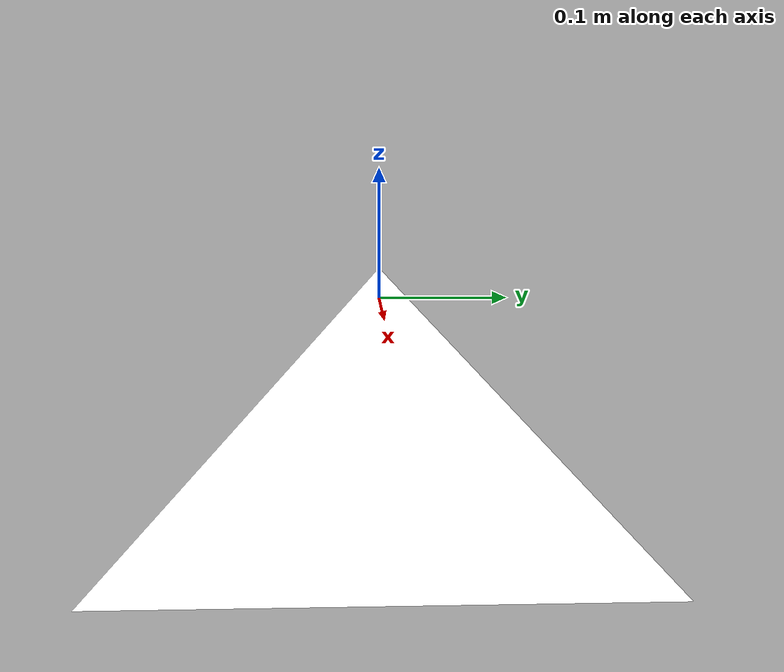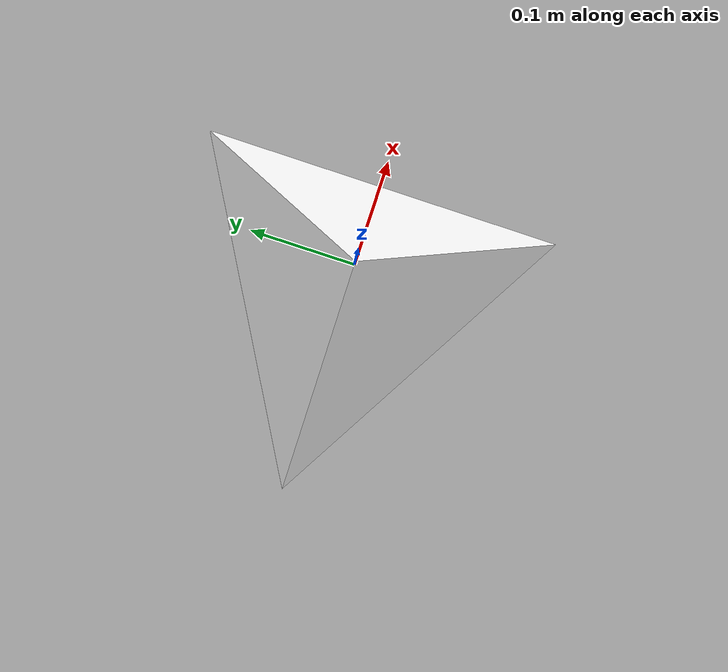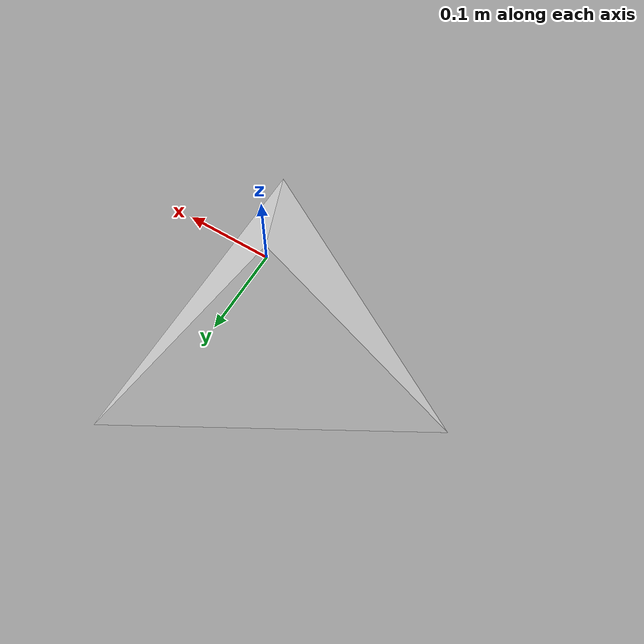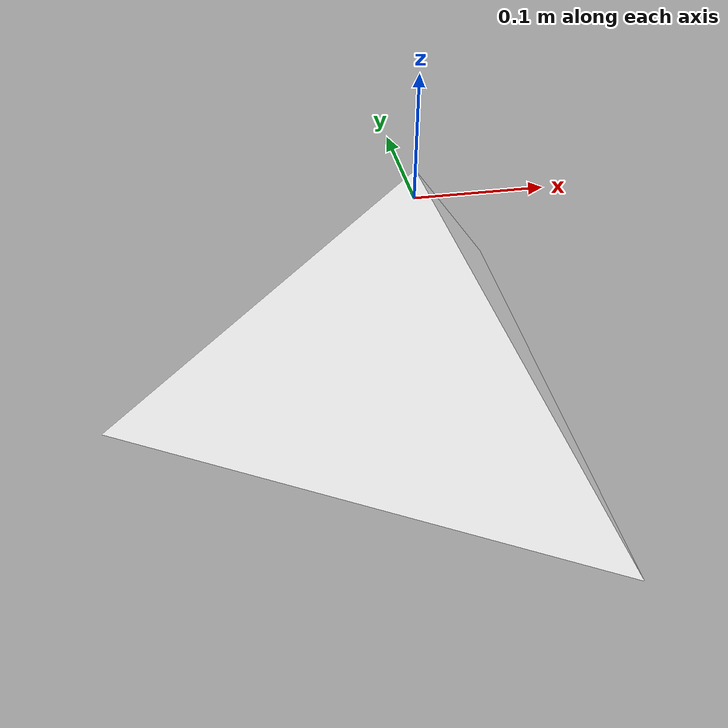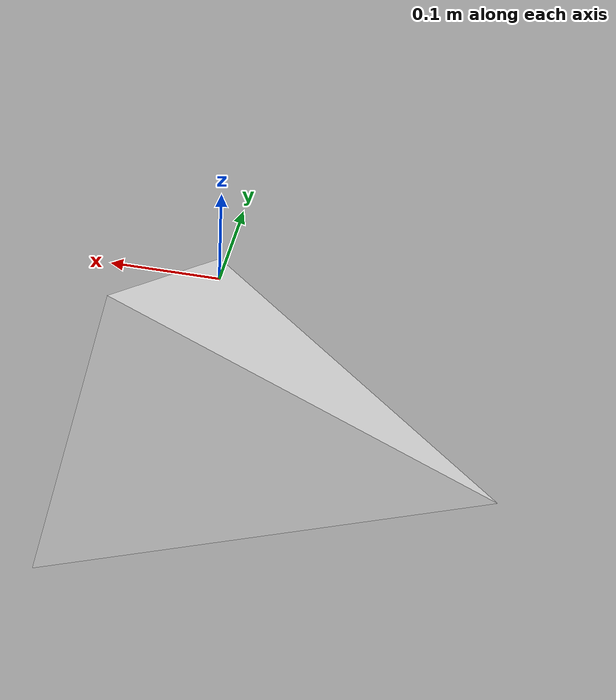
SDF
<?xml version='1.0'?>
<sdf version='1.4'>
  <model name="pyramid">
    <static>false</static>
    <link name="link">
      <collision name='collision'>
	<pose>0 0 -.2 0 0 0</pose>
        <geometry>
	  <mesh>
	    <uri>model://pyramid/meshes/model.dae</uri>
	    <scale>1 1 1</scale>
	  </mesh>
        </geometry>
      </collision>

      <visual name='visual'>
	<pose>0 0 -.2 0 0 0</pose>
        <geometry>
	  <mesh>
	    <uri>model://pyramid/meshes/model.dae</uri>
	    <scale>1 1 1</scale>
	  </mesh>
        </geometry>
      </visual>
    </link>

    <plugin name="model_push" filename="libmodel_push.so"/>

  </model>
</sdf>
